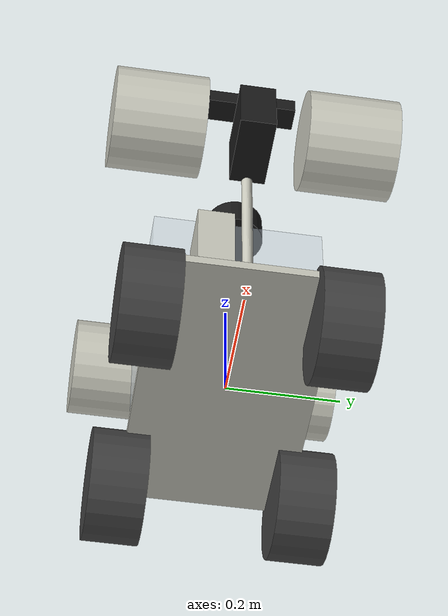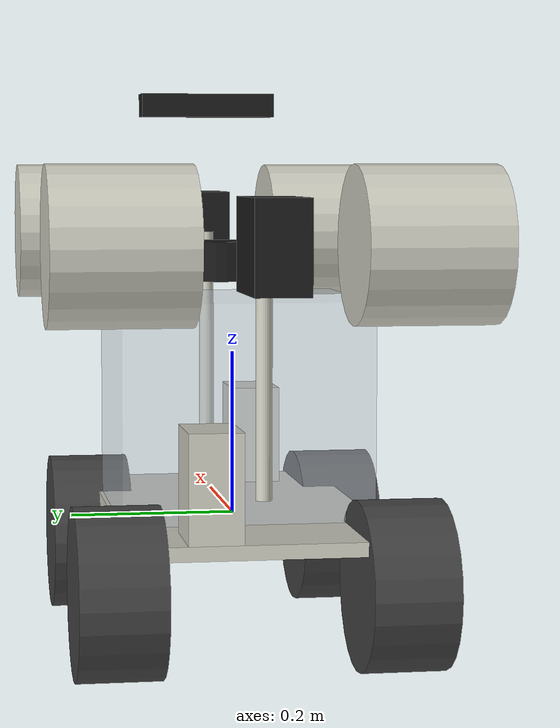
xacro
<?xml version="1.0"?>
<robot xmlns:xacro="http://www.ros.org/wiki/xacro" name="cac_rover_ign">
    <gazebo>
        <plugin
        filename="ignition-gazebo-joint-state-publisher-system"
        name="ignition::gazebo::systems::JointStatePublisher">
        <topic>/joint_states</topic>
        </plugin>
    </gazebo>

  <!-- Differential Drive Controller -->
  <!-- Allows driving the rover via /cmd_vel -->
  <gazebo>
    <plugin
      filename="ignition-gazebo-diff-drive-system"
      name="ignition::gazebo::systems::DiffDrive">
      <!-- Front & Rear Left Wheels -->
      <left_joint>front_left_wheel_link_joint</left_joint>
      <left_joint>back_left_wheel_link_joint</left_joint>

      <!-- Front & Rear Right Wheels -->
      <right_joint>front_right_wheel_link_joint</right_joint>
      <right_joint>back_right_wheel_link_joint</right_joint>

      <wheel_separation>0.4275</wheel_separation>
      <wheel_radius>0.1</wheel_radius>

      <topic>/motion</topic>
      <odom_topic>/odom</odom_topic>
      <tf_topic>/tf</tf_topic>
      <frame_id>odom</frame_id>
      <child_frame_id>base_footprint</child_frame_id>
      <odom_publisher_frequency>50</odom_publisher_frequency>
    </plugin>
  </gazebo>

    <xacro:macro name="inertial_box" params="mass x y z *origin">
        <inertial>
            <xacro:insert_block name="origin"/>
            <mass value="${mass}" />
            <inertia
                ixx="${(1/12) * mass * (y*y + z*z)}" ixy="0.0" ixz="0.0"
                iyy="${(1/12) * mass * (x*x + z*z)}" iyz="0.0"
                izz="${(1/12) * mass * (x*x + y*y)}" />
        </inertial>
    </xacro:macro>

    <xacro:macro name="inertial_cylinder" params="mass length radius *origin">
        <inertial>
            <xacro:insert_block name="origin"/>
            <mass value="${mass}" />
            <inertia
                ixx="${(1/12) * mass * (3*radius*radius + length*length)}" ixy="0.0" ixz="0.0"
                iyy="${(1/12) * mass * (3*radius*radius + length*length)}" iyz="0.0"
                izz="${(1/2) * mass * (radius*radius)}" />
        </inertial>
    </xacro:macro>

    <xacro:macro name="aluminium">
        <material name="aluminium">
            <color rgba="0.8 0.8 0.75 1.0"/>
        </material>
    </xacro:macro>

    <xacro:macro name="polycarbonate">
        <material name="polycarbonate">
            <color rgba="0.8 0.85 0.9 0.4"/>
        </material>
    </xacro:macro>

    <xacro:macro name="black_pla">
        <material name="black_pla">
            <color rgba="0.1 0.1 0.1 1.0"/>
        </material>
    </xacro:macro>

    <xacro:macro name="gray_tpu">
        <material name="gray_tpu">
            <color rgba="0.255 0.255 0.255 1.0"/>
        </material>
    </xacro:macro>
    <!-- Base Footprint Link -->
    <link name="base_footprint" />

    <!-- Base Footprint Joint -->
     <joint name="base_link_joint" type="fixed">
        <origin xyz="0.0 0.0 0.0085" rpy="0.0 0.0 0.0"/>
        <parent link="base_footprint"/>
        <child link="base_link"/>
     </joint>

    <!-- Base (Chassis) Link -->
    <link name="base_link">
        <xacro:inertial_box mass="2.0" x="0.55" y="0.31" z="0.017">
            <origin xyz="0.0 0.0 -0.0085" rpy="0.0 0.0 0.0"/>
        </xacro:inertial_box>
        <visual name="base_link_visual">
            <origin xyz="0.0 0.0 -0.0085" rpy="0.0 0.0 0.0"/>
            <geometry>
                <box size="0.55 0.31 0.017"/>
            </geometry>
            <xacro:aluminium />
        </visual>
        <collision>
            <origin xyz="0.0 0.0 -0.0085" rpy="0.0 0.0 0.0"/>
            <geometry>
                <box size="0.55 0.31 0.017"/>
            </geometry>
        </collision>
    </link>

    <!-- Elecbox joint -->
    <joint name="elecbox_joint" type="fixed">
        <origin xyz="0.0 0.0 0.0" rpy="0.0 0.0 0.0"/>
        <parent link="base_link"/>
        <child link="elecbox_link"/>
    </joint>

    <!-- Elecbox Link -->
    <link name="elecbox_link">
        <xacro:inertial_box mass="1.1" x="0.29" y="0.3" z="0.26">
            <origin xyz="0.0 0.0 0.13" rpy="0.0 0.0 0.0"/>
        </xacro:inertial_box>
        <visual name="elecbox_link_visual">
            <origin xyz="0.0 0.0 0.13" rpy="0.0 0.0 0.0"/>
            <geometry>
                <box size="0.29 0.3 0.26"/>
            </geometry>
            <xacro:polycarbonate />
        </visual>
        <collision>
            <origin xyz="0.0 0.0 0.13" rpy="0.0 0.0 0.0"/>
            <geometry>
                <box size="0.29 0.3 0.26"/>
            </geometry>
        </collision>
    </link>

    <!-- Shoulder Block Links -->
    <xacro:macro name="shoulder_block_link" params="direction">
        <xacro:property name="rotation" value="${0.0 if direction == 'front' else pi}" />
        <link name="${direction}_shoulder_block_link">
            <xacro:inertial_box mass="1.9" x="0.091" y="0.063" z="0.126">
                <origin xyz="0.0 0.0 0.063" rpy="0.0 0.0 0.0"/>
            </xacro:inertial_box>
            <visual name="${direction}_shoulder_box_link_visual">
                <origin xyz="0.0 0.0 0.063" rpy="0.0 0.0 0.0"/>
                <geometry>
                    <box size="0.091 0.063 0.126"/>
                </geometry>
                <xacro:aluminium />
            </visual>
            <collision>
                <origin xyz="0.0 0.0 0.063" rpy="0.0 0.0 0.0"/>
                <geometry>
                    <box size="0.091 0.063 0.126"/>
                </geometry>
            </collision>
        </link>

        <joint name="${direction}_shoulder_block_link_joint" type="fixed">
            <xacro:property name="x_val" value="${0.2295 if direction == 'front' else -0.2295}" />
            <xacro:property name="offset" value="${-0.0585 if direction == 'front' else 0.0585}"/>
            <origin xyz="${x_val} ${offset} 0.0" rpy="0.0 0.0 ${rotation}"/>
            <parent link="base_link"/>
            <child link="${direction}_shoulder_block_link"/>
        </joint>
    </xacro:macro>

    <xacro:shoulder_block_link direction="front" />
    <xacro:shoulder_block_link direction="back" />

    <!-- Shoulder Links -->
    <xacro:macro name="shoulder_link" params="direction">
        <link name="${direction}_shoulder_link">
            <xacro:inertial_cylinder mass="0.3" length="0.29" radius="0.0095">
                <origin xyz="0.0 0.0 0.145" rpy="0.0 0.0 0.0"/>
            </xacro:inertial_cylinder>
            <visual name="${direction}_shoulder_link_visual">
                <origin xyz="0.0 0.0 0.145" rpy="0.0 0.0 0.0"/>
                <geometry>
                    <cylinder radius="0.0095" length="0.29"/>
                </geometry>
                <xacro:aluminium />
            </visual>
            <collision>
                <origin xyz="0.0 0.0 0.145" rpy="0.0 0.0 0.0"/>
                <geometry>
                    <cylinder radius="0.0095" length="0.29"/>
                </geometry>
            </collision>
        </link>

        <joint name="${direction}_shoulder_link_joint" type="revolute">
            <origin xyz="0.0 0.06 0.043" rpy="0.0 0.0 0.0"/>
            <parent link="${direction}_shoulder_block_link"/>
            <child link="${direction}_shoulder_link"/>
            <axis xyz="0.0 1.0 0.0"/>
            <limit lower="0.0" upper="${3 * pi / 4}" effort="200.0" velocity="1.0"/>
            <dynamics damping="1.0" friction="20.0"/>
        </joint>
    </xacro:macro>

    <xacro:shoulder_link direction="front" />
    <xacro:shoulder_link direction="back"/>

    <!-- Drum Block Link -->
    <xacro:macro name="drum_block_link" params="direction">
        <link name="${direction}_drum_block_link">
            <xacro:inertial_box mass="1.5" x="0.13" y="0.0629" z="0.106">
                <origin xyz="0.065 0.0 0.0" rpy="0.0 0.0 0.0"/>
            </xacro:inertial_box>
            <visual name="${direction}_drum_block_link_visual">
                <origin xyz="0.065 0.0 0.0" rpy="0.0 0.0 0.0"/>
                <geometry>
                    <box size="0.13 0.0629 0.106"/>
                </geometry>
                <xacro:black_pla />
            </visual>
            <collision>
                <origin xyz="0.065 0.0 0.0" rpy="0.0 0.0 0.0"/>
                <geometry>
                    <box size="0.13 0.0629 0.106"/>
                </geometry>
            </collision>
        </link>

        <joint name="${direction}_drum_block_link_joint" type="fixed">
            <origin xyz="0.0 0.0 0.29" rpy="0.0 0.0 0.0"/>
            <parent link="${direction}_shoulder_link"/>
            <child link="${direction}_drum_block_link"/>
        </joint>
    </xacro:macro>

    <xacro:drum_block_link direction="front" />
    <xacro:drum_block_link direction="back" />

    <!-- Drum Links -->
    <xacro:macro name="drum_link" params="direction side">
        <link name="${direction}_${side}_drum_link">
            <xacro:inertial_cylinder mass="0.8" length="0.16" radius="0.089">
                <origin xyz="0.0 0.0 0.0" rpy="0.0 0.0 0.0"/>
            </xacro:inertial_cylinder>
            <visual name="drum_link_visual">
                <origin xyz="0.0 0.0 0.0" rpy="0.0 0.0 0.0"/>
                <geometry>
                    <cylinder radius="0.089" length="0.16"/>
                </geometry>
                <xacro:aluminium />
            </visual>
            <collision>
                <origin xyz="0.0 0.0 0.0" rpy="0.0 0.0 0.0"/>
                <geometry>
                    <cylinder radius="0.089" length="0.16"/>
                </geometry>
            </collision>
        </link>

        <joint name="${direction}_${side}_drum_link_joint" type="continuous">
            <xacro:property name="align" value="${pi / 2 if side == 'left' else -pi / 2}" />
            <xacro:property name="y_offset" value="${0.16845 if side == 'left' else -0.16845}" />
            <origin xyz="0.065 ${y_offset} 0.0" rpy="${align} 0.0 0.0"/>
            <parent link="${direction}_drum_block_link"/>
            <child link="${direction}_${side}_drum_link"/>
            <axis xyz="0.0 0.0 1.0"/>
            <limit effort="10.0" velocity="1.0"/>
        </joint>
    </xacro:macro>

    <xacro:drum_link direction="front" side="left" />
    <xacro:drum_link direction="front" side="right" />
    <xacro:drum_link direction="back" side="left" />
    <xacro:drum_link direction="back" side="right" />

    <!-- Wheel Links with Integrated Compliant Spoke Deformation -->
    <xacro:macro name="wheel_link" params="direction side">

        <!-- 1. Dummy Axle Link (Connects spring joint to rotation joint) -->
        <link name="${direction}_${side}_wheel_axle_link">
            <xacro:inertial_box mass="0.01" x="0.01" y="0.01" z="0.01">
                <origin xyz="0 0 0" rpy="0 0 0"/>
            </xacro:inertial_box>
        </link>

        <!-- 2. Virtual Compliant Joint (Simulates 2-3 cm TPU spoke compression) -->
        <joint name="${direction}_${side}_wheel_compliance_joint" type="prismatic">
            <xacro:property name="x_off" value="${0.210 if direction == 'front' else -0.210}" />
            <xacro:property name="y_off" value="${0.16375 if side == 'left' else -0.16375}" />

            <origin xyz="${x_off} ${y_off} -0.063238" rpy="0.0 0.0 0.0"/>
            <parent link="base_link"/>
            <child link="${direction}_${side}_wheel_axle_link"/>

            <!-- Moves vertically along Z-axis -->
            <axis xyz="0.0 0.0 1.0"/>
            <!-- Limits travel: 0.0 is uncompressed, -0.03 is 3 cm max squish -->
            <limit lower="-0.03" upper="0.0" effort="500.0" velocity="2.0"/>

            <!-- Dynamic Stiffness & Damping for TPU spokes -->
            <dynamics spring_stiffness="2940.0" spring_reference="0.0" damping="80.0"/>
        </joint>

        <!-- 3. Physical Wheel Link -->
        <link name="${direction}_${side}_wheel_link">
            <xacro:inertial_cylinder mass="2.5" radius="0.1" length="0.1">
                <origin xyz="0.0 0.0 0.0" rpy="${pi/2} 0.0 0.0"/>
            </xacro:inertial_cylinder>
            <visual name="${direction}_${side}_wheel_visual">
                <origin xyz="0.0 0.0 0.0" rpy="${pi/2} 0.0 0.0"/>
                <geometry>
                    <cylinder radius="0.1" length="0.1"/>
                </geometry>
                <xacro:gray_tpu />
            </visual>
            <collision>
                <origin xyz="0.0 0.0 0.0" rpy="${pi/2} 0.0 0.0"/>
                <geometry>
                    <cylinder radius="0.1" length="0.1"/>
                </geometry>
            </collision>
        </link>

        <!-- 4. Wheel Rotation Joint (Attached to Axle Link instead of Base Link) -->
        <joint name="${direction}_${side}_wheel_link_joint" type="continuous">
            <origin xyz="0.0 0.0 0.0" rpy="0.0 0.0 0.0"/>
            <parent link="${direction}_${side}_wheel_axle_link"/>
            <child link="${direction}_${side}_wheel_link"/>

            <axis xyz="0.0 1.0 0.0"/>
            <limit effort="50.0" velocity="10.0"/>
        </joint>

        <!-- Dynamic Surface Contact -->
        <gazebo reference="${direction}_${side}_wheel_link">
            <mu1>1.0</mu1>
            <mu2>0.1</mu2>
            <fdir1>1 0 0</fdir1>
            <kp>100000.0</kp> <!-- Stiffer surface since spring joint handles compliance -->
            <kd>100.0</kd>
        </gazebo>
    </xacro:macro>

    <xacro:wheel_link direction="front" side="left" />
    <xacro:wheel_link direction="front" side="right" />
    <xacro:wheel_link direction="back" side="left" />
    <xacro:wheel_link direction="back" side="right" />

    <!-- ZED Camera Link -->
    <link name="zed_camera_link">
        <xacro:inertial_box mass="0.166" y="0.17525" z="0.03025" x="0.0431" >
            <origin xyz="0.0 0.0 0.0" rpy="0.0 0.0 0.0"/>
        </xacro:inertial_box>
        <visual name="zed_camera_link_visual">
            <origin xyz="0.0 0.0 0.0" rpy="0.0 0.0 0.0"/>
            <geometry>
                <box size="0.0431 0.17525 0.03025"/>
            </geometry>
            <xacro:black_pla />
        </visual>
        <collision>
            <origin xyz="0.0 0.0 0.0" rpy="0.0 0.0 0.0"/>
            <geometry>
                <box size="0.0431 0.17525 0.03025"/>
            </geometry>
        </collision>
    </link>

    <joint name="zed_camera_link_joint" type="fixed">
        <origin xyz="0.0 0.06 0.5" rpy="0.0 0.0 0.0 "/>
        <parent link="front_shoulder_block_link"/>
        <child link="zed_camera_link"/>
    </joint>

    <!-- ZED Camera Optical Frame -->
    <link name="zed_camera_optical_frame"/>

    <!-- Dedicated frame for Gazebo Sim RGBD Point Cloud -->
    <link name="zed_camera_gz_pointcloud_frame"/>

    <joint name="zed_camera_gz_pointcloud_joint" type="fixed">
        <!-- Identity rotation (0 0 0) keeps coordinates aligned with base_link -->
        <origin xyz="0.0 0.0 0.0" rpy="${pi/2} 0.0 ${pi/2}"/>
        <parent link="zed_camera_link"/>
        <child link="zed_camera_gz_pointcloud_frame"/>
    </joint>

    <joint name="zed_camera_optical_joint" type="fixed">
        <origin xyz="0.06 0.0 0.015125" rpy="${-pi/2} 0.0 ${-pi/2}"/>
        <parent link="zed_camera_link"/>
        <child link="zed_camera_optical_frame"/>
    </joint>

    <gazebo reference="elecbox_link">
        <sensor name="imu_sensor" type="imu">
            <always_on>1</always_on>
            <update_rate>100</update_rate>
            <visualize>true</visualize>
            <topic>/imu/data</topic>
            <pose>0 0 0.075 0 0 0</pose>
        </sensor>
    </gazebo>

    <gazebo reference="zed_camera_link">
        <sensor name="zed_camera" type="rgbd_camera">
            <gz_frame_id>zed_camera_link</gz_frame_id>
            <visualize>false</visualize>
            <camera name="zed_camera">
                <optical_frame_id>zed_camera_link</optical_frame_id>
                <horizontal_fov>1.91986</horizontal_fov> <!-- ~110 degree horizontal FOV -->
                <image>
                    <width>1280</width>
                    <height>720</height>
                    <format>R8G8B8</format>
                </image>
                <clip>
                    <near>0.3</near>
                    <far>20.0</far>
                </clip>
            </camera>
            <always_on>1</always_on>
            <update_rate>15</update_rate>
            <topic>/zed/zed_node</topic>
        </sensor>
    </gazebo>

    <!-- ZED Internal High-Precision IMU Sensor -->
    <gazebo reference="zed_camera_link">
        <sensor name="zed_imu_sensor" type="imu">
            <always_on>true</always_on>
            <update_rate>200</update_rate>
            <visualize>false</visualize>
            <topic>/zed/zed_node/imu/data</topic>
            <gz_frame_id>zed_camera_link</gz_frame_id>

            <imu>
                <angular_velocity>
                    <x>
                        <noise type="gaussian">
                            <mean>0.0</mean>
                            <stddev>0.0009</stddev>
                            <bias_mean>0.0</bias_mean>
                            <bias_stddev>0.00001</bias_stddev>
                        </noise>
                    </x>
                    <y>
                        <noise type="gaussian">
                            <mean>0.0</mean>
                            <stddev>0.0009</stddev>
                            <bias_mean>0.0</bias_mean>
                            <bias_stddev>0.00001</bias_stddev>
                        </noise>
                    </y>
                    <z>
                        <noise type="gaussian">
                            <mean>0.0</mean>
                            <stddev>0.0009</stddev>
                            <bias_mean>0.0</bias_mean>
                            <bias_stddev>0.00001</bias_stddev>
                        </noise>
                    </z>
                </angular_velocity>
                <linear_acceleration>
                    <x>
                        <noise type="gaussian">
                            <mean>0.0</mean>
                            <stddev>0.003</stddev>
                            <bias_mean>0.0</bias_mean>
                            <bias_stddev>0.0001</bias_stddev>
                        </noise>
                    </x>
                    <y>
                        <noise type="gaussian">
                            <mean>0.0</mean>
                            <stddev>0.003</stddev>
                            <bias_mean>0.0</bias_mean>
                            <bias_stddev>0.0001</bias_stddev>
                        </noise>
                    </y>
                    <z>
                        <noise type="gaussian">
                            <mean>0.0</mean>
                            <stddev>0.003</stddev>
                            <bias_mean>0.0</bias_mean>
                            <bias_stddev>0.0001</bias_stddev>
                        </noise>
                    </z>
                </linear_acceleration>
            </imu>
        </sensor>
    </gazebo>

    <gazebo reference="zed_camera_link_joint">
        <preserveFixedJoint>true</preserveFixedJoint>
    </gazebo>
    <!-- LiDAR Link -->
<link name="lidar_link">
    <xacro:inertial_cylinder mass="0.125" length="0.05" radius="0.05">
        <origin xyz="0 0 0" rpy="0 0 0"/>
    </xacro:inertial_cylinder>
    <visual>
        <origin xyz="0 0 0" rpy="0 0 0"/>
        <geometry>
            <cylinder radius="0.05" length="0.05"/>
        </geometry>
        <material name="black_pla"/>
    </visual>
    <collision>
        <origin xyz="0 0 0" rpy="0 0 0"/>
        <geometry>
            <cylinder radius="0.05" length="0.05"/>
        </geometry>
    </collision>
</link>

<!-- LiDAR Joint -->
<joint name="lidar_joint" type="fixed">
    <origin xyz="0.1 0 0.3" rpy="0 0 0"/>
    <parent link="base_link"/>
    <child link="lidar_link"/>
</joint>

<!-- Gazebo Sensor Plugin -->
<gazebo reference="lidar_link">
    <sensor name="lidar_sensor" type="gpu_lidar">
        <always_on>true</always_on>
        <update_rate>30</update_rate>
        <visualize>true</visualize>
        <topic>/scan</topic>
        <gz_frame_id>lidar_link</gz_frame_id>
        <ray>
            <scan>
                <horizontal>
                    <samples>360</samples>
                    <resolution>1.0</resolution>
                    <min_angle>-3.14159</min_angle>
                    <max_angle>3.14159</max_angle>
                </horizontal>
            </scan>
            <range>
                <min>0.1</min>
                <max>10.0</max>
                <resolution>0.01</resolution>
            </range>
        </ray>
    </sensor>
</gazebo>
</robot>
